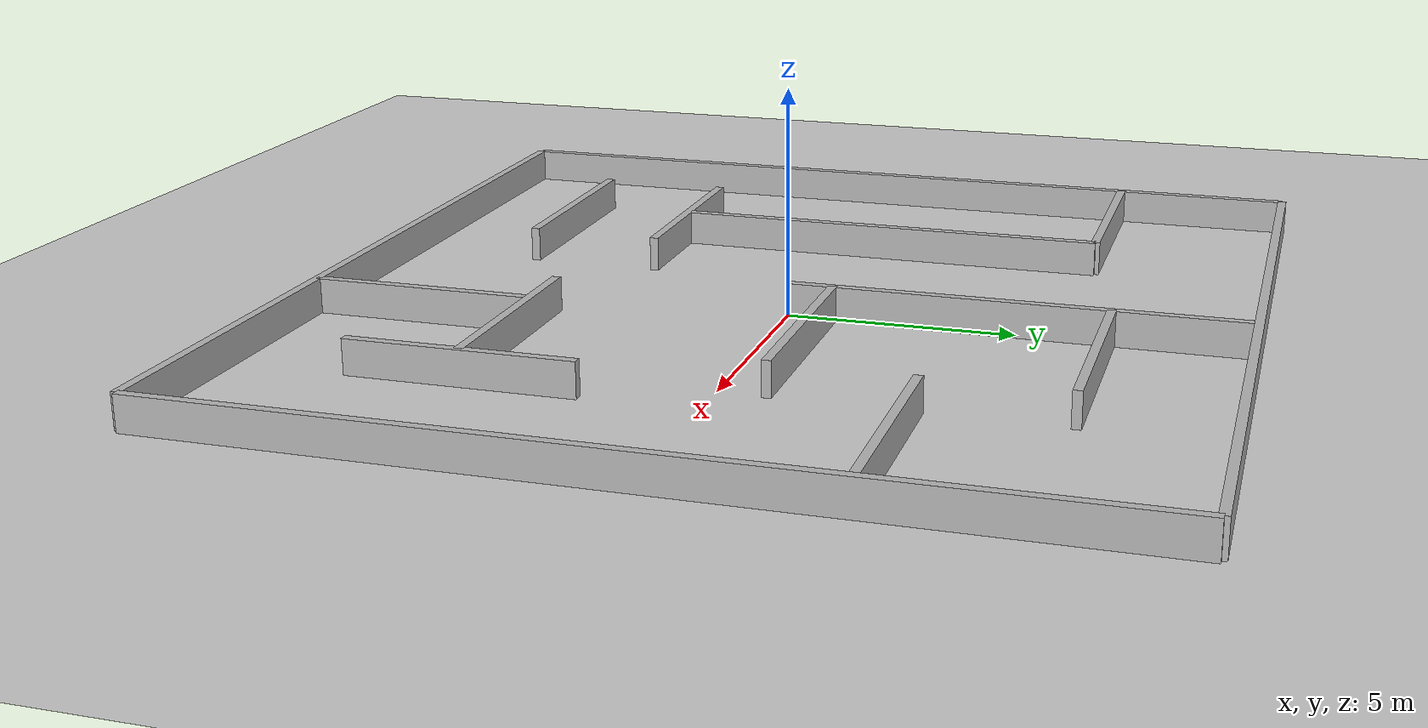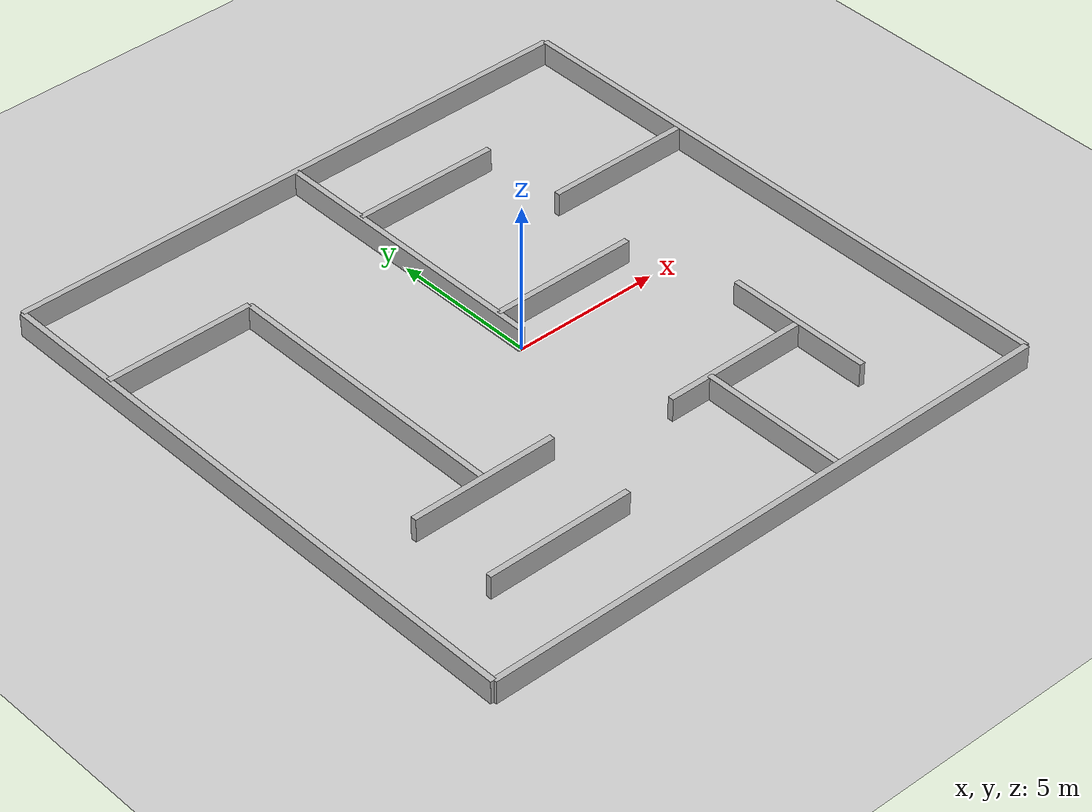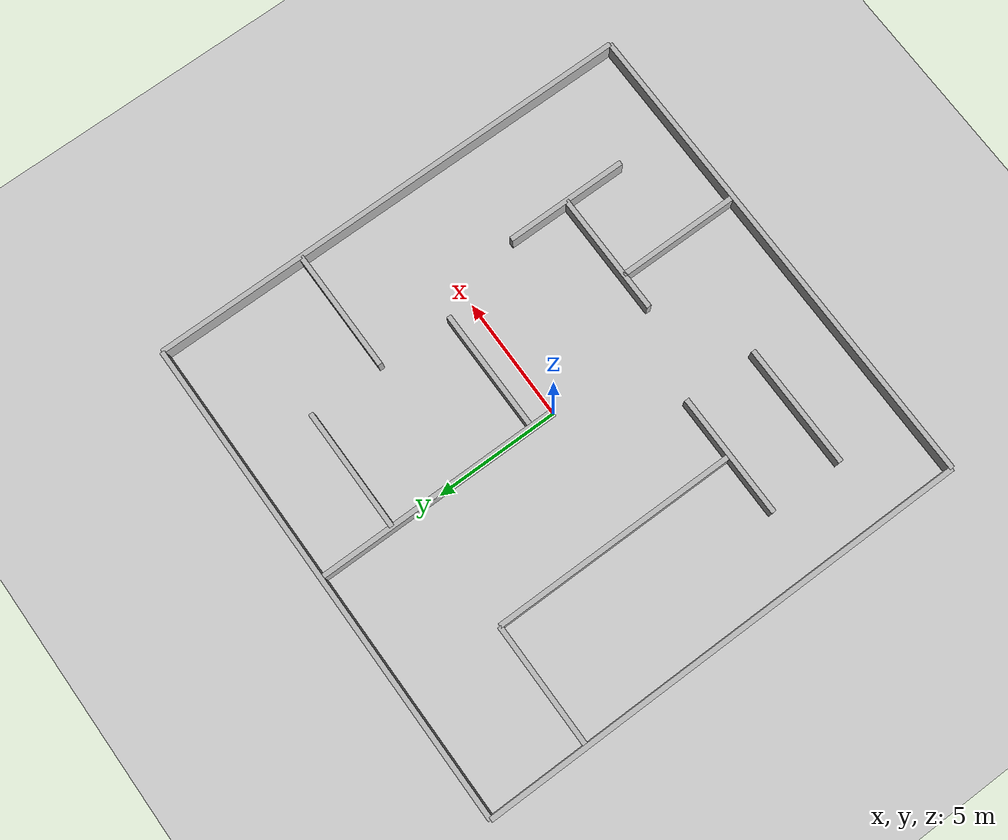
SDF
<sdf version='1.10'>
  <world name='empty'>
    <physics name='1ms' type='ignored'>
      <max_step_size>0.001</max_step_size>
      <real_time_factor>1</real_time_factor>
      <real_time_update_rate>1000</real_time_update_rate>
    </physics>
    <plugin name='gz::sim::systems::Physics' filename='gz-sim-physics-system'/>
    <plugin name='gz::sim::systems::UserCommands' filename='gz-sim-user-commands-system'/>
    <plugin name='gz::sim::systems::SceneBroadcaster' filename='gz-sim-scene-broadcaster-system'/>
    <plugin name='gz::sim::systems::Contact' filename='gz-sim-contact-system'/>
    <plugin
        filename="gz-sim-sensors-system"
        name="gz::sim::systems::Sensors">
        <render_engine>ogre2</render_engine>
    </plugin>
    <gravity>0 0 -9.8000000000000007</gravity>
    <magnetic_field>5.5644999999999998e-06 2.2875799999999999e-05 -4.2388400000000002e-05</magnetic_field>
    <atmosphere type='adiabatic'/>
    <scene>
      <ambient>0.400000006 0.400000006 0.400000006 1</ambient>
      <background>0.699999988 0.699999988 0.699999988 1</background>
      <shadows>true</shadows>
    </scene>
    <model name='ground_plane'>
      <static>true</static>
      <link name='link'>
        <collision name='collision'>
          <geometry>
            <plane>
              <normal>0 0 1</normal>
              <size>100 100</size>
            </plane>
          </geometry>
          <surface>
            <friction>
              <ode/>
            </friction>
            <bounce/>
            <contact/>
          </surface>
        </collision>
        <visual name='visual'>
          <geometry>
            <plane>
              <normal>0 0 1</normal>
              <size>100 100</size>
            </plane>
          </geometry>
          <material>
            <ambient>0.800000012 0.800000012 0.800000012 1</ambient>
            <diffuse>0.800000012 0.800000012 0.800000012 1</diffuse>
            <specular>0.800000012 0.800000012 0.800000012 1</specular>
          </material>
        </visual>
        <pose>0 0 0 0 0 0</pose>
        <inertial>
          <pose>0 0 0 0 0 0</pose>
          <mass>1</mass>
          <inertia>
            <ixx>1</ixx>
            <ixy>0</ixy>
            <ixz>0</ixz>
            <iyy>1</iyy>
            <iyz>0</iyz>
            <izz>1</izz>
          </inertia>
        </inertial>
        <enable_wind>false</enable_wind>
      </link>
      <pose>0 0 0 0 0 0</pose>
      <self_collide>false</self_collide>
    </model>
    <light name='sun' type='directional'>
      <pose>0 0 10 0 0 0</pose>
      <cast_shadows>true</cast_shadows>
      <intensity>1</intensity>
      <direction>-0.5 0.10000000000000001 -0.90000000000000002</direction>
      <diffuse>0.800000012 0.800000012 0.800000012 1</diffuse>
      <specular>0.200000003 0.200000003 0.200000003 1</specular>
      <attenuation>
        <range>1000</range>
        <linear>0.01</linear>
        <constant>0.90000000000000002</constant>
        <quadratic>0.001</quadratic>
      </attenuation>
      <spot>
        <inner_angle>0</inner_angle>
        <outer_angle>0</outer_angle>
        <falloff>0</falloff>
      </spot>
    </light>

<include>
  <uri>model://20m_wall</uri>
  <name>parede_norte</name>
  <pose>10 0 0 0 0 1.57</pose>
</include>

<include>
  <uri>model://20m_wall</uri>
  <name>parede_sul</name>
  <pose>-10 0 0 0 0 1.57</pose>
</include>

<include>
  <uri>model://20m_wall</uri>
  <name>parede_leste</name>
  <pose>0 -10 0 0 0 0</pose>
</include>

<include>
  <uri>model://20m_wall</uri>
  <name>parede_oeste</name>
  <pose>0 10 0 0 0 0</pose>
</include>

<include>
  <uri>model://5m_wall</uri>
  <name>w5_01</name>
  <pose>-7.5 6 0 0 0 0</pose>
</include>

<include>
  <uri>model://5m_wall</uri>
  <name>w5_02</name>
  <pose>-5 -4 0 0 0 0</pose>
</include>

<include>
  <uri>model://5m_wall</uri>
  <name>w5_03</name>
  <pose>-5 -7 0 0 0 0</pose>
</include>

<include>
  <uri>model://5m_wall</uri>
  <name>w5_04</name>
  <pose>2.5 7 0 0 0 0</pose>
</include>

<include>
  <uri>model://5m_wall</uri>
  <name>w5_05</name>
  <pose>7.5 4 0 0 0 0</pose>
</include>

<include>
  <uri>model://5m_wall</uri>
  <name>w5_06</name>
  <pose>2.5 1 0 0 0 0</pose>
</include>

<include>
  <uri>model://5m_wall</uri>
  <name>w5_07</name>
  <pose>2.5 -7.5 0 0 0 1.57</pose>
</include>

<include>
  <uri>model://5m_wall</uri>
  <name>w5_08</name>
  <pose>3.5 -5 0 0 0 0</pose>
</include>

<include>
  <uri>model://5m_wall</uri>
  <name>w5_09</name>
  <pose>6 -5 0 0 0 1.57</pose>
</include>

<include>
  <uri>model://10m_wall</uri>
  <name>w10_01</name>
  <pose>-5 1 0 0 0 1.57</pose>
</include>

<include>
  <uri>model://10m_wall</uri>
  <name>w10_02</name>
  <pose>0 5 0 0 0 1.57</pose>
</include>

  </world>
</sdf>

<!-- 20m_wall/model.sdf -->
<sdf version="1.6">
  <model name="parede_20m">
    <static>true</static>

    <pose>0 0 0.75 0 0 0</pose>

    <link name="link">
      <collision name="collision">
        <geometry>
          <box>
            <size>20 0.2 1.5</size>
          </box>
        </geometry>
      </collision>
      <visual name="visual">
        <geometry>
          <box>
            <size>20 0.2 1.5</size>
          </box>
        </geometry>
      </visual>
    </link>
  </model>
</sdf>

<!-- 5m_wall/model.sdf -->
<sdf version="1.6">
  <model name="parede_5m">
    <static>true</static>

    <pose>0 0 0.75 0 0 0</pose>

    <link name="link">
      <collision name="collision">
        <geometry>
          <box>
            <size>5 0.2 1.5</size>
          </box>
        </geometry>
      </collision>
      <visual name="visual">
        <geometry>
          <box>
            <size>5 0.2 1.5</size>
          </box>
        </geometry>
      </visual>
    </link>
  </model>
</sdf>

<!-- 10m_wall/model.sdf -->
<sdf version="1.6">
  <model name="parede_5m">
    <static>true</static>

    <pose>0 0 0.75 0 0 0</pose>

    <link name="link">
      <collision name="collision">
        <geometry>
          <box>
            <size>10 0.2 1.5</size>
          </box>
        </geometry>
      </collision>
      <visual name="visual">
        <geometry>
          <box>
            <size>10 0.2 1.5</size>
          </box>
        </geometry>
      </visual>
    </link>
  </model>
</sdf>
